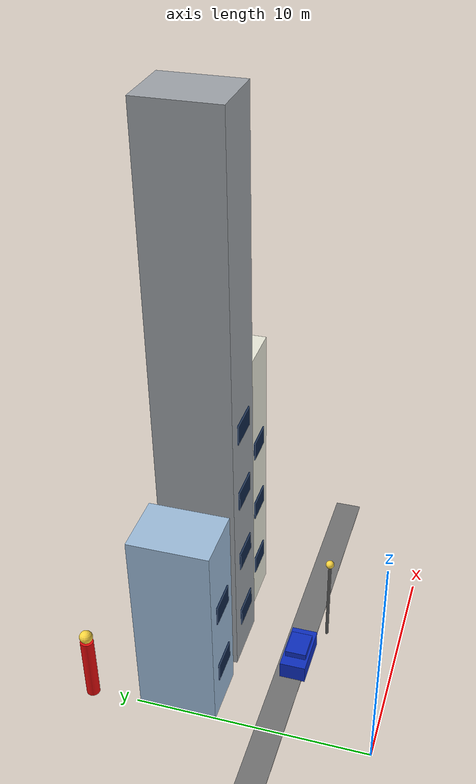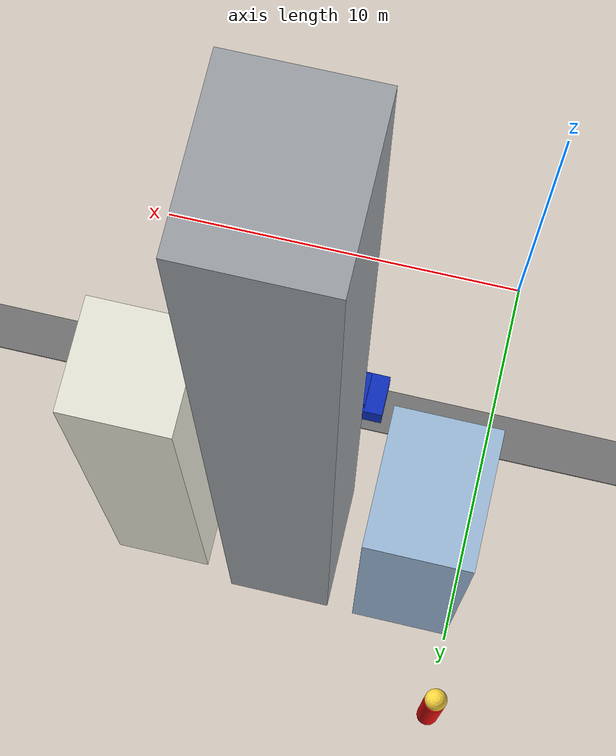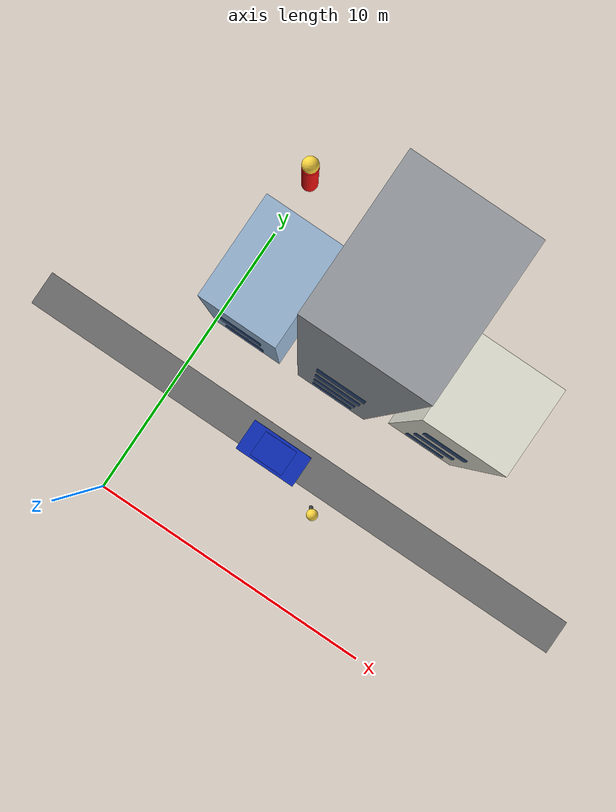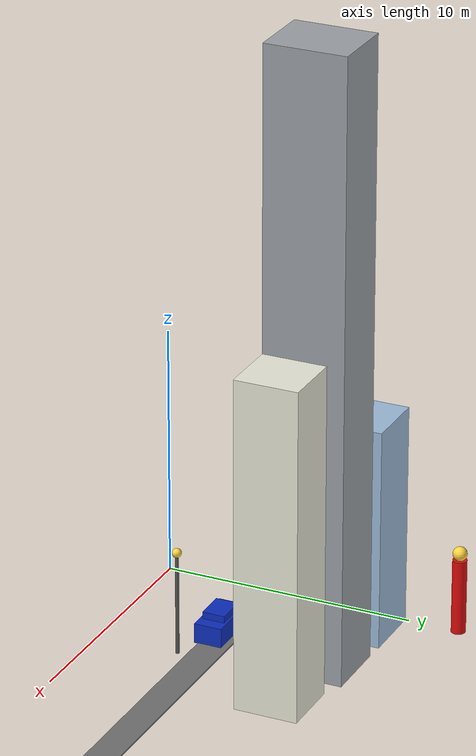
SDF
<sdf version="1.7">
 <world name="urban_street">
  <model name="north_sidewalk">
   <static>true</static>
   <pose>0 4.25 0.04 0 0 0.0</pose>
   <link name="link">
    <collision name="collision"><geometry><box><size>90 1.2 0.06</size></box></geometry></collision>
    <visual name="visual">
     <geometry><box><size>90 1.2 0.06</size></box></geometry>
     <material>
      <ambient>0.45 0.45 0.45 1</ambient>
      <diffuse>0.45 0.45 0.45 1</diffuse>
      <specular>0.1 0.1 0.1 1</specular>
     </material>
    </visual>
   </link>
  </model>
  <model name="building_facade_40">
   <static>true</static>
   <pose>1.25 8.2 4.41 0 0 0.0</pose>
   <link name="link">
    <collision name="collision"><geometry><box><size>2.51 3.29 8.82</size></box></geometry></collision>
    <visual name="visual">
     <geometry><box><size>2.51 3.29 8.82</size></box></geometry>
     <material>
      <ambient>0.62 0.74 0.86 1</ambient>
      <diffuse>0.62 0.74 0.86 1</diffuse>
      <specular>0.1 0.1 0.1 1</specular>
     </material>
    </visual>
   </link>
  </model>
  <model name="building_facade_40_window_0">
   <static>true</static>
   <pose>1.25 6.52 2.2 0 0 0.0</pose>
   <link name="link">
    <collision name="collision"><geometry><box><size>1.38 0.05 0.85</size></box></geometry></collision>
    <visual name="visual">
     <geometry><box><size>1.38 0.05 0.85</size></box></geometry>
     <material>
      <ambient>0.05 0.14 0.28 1</ambient>
      <diffuse>0.05 0.14 0.28 1</diffuse>
      <specular>0.1 0.1 0.1 1</specular>
     </material>
    </visual>
   </link>
  </model>
  <model name="building_facade_40_window_1">
   <static>true</static>
   <pose>1.25 6.52 5.4 0 0 0.0</pose>
   <link name="link">
    <collision name="collision"><geometry><box><size>1.38 0.05 0.85</size></box></geometry></collision>
    <visual name="visual">
     <geometry><box><size>1.38 0.05 0.85</size></box></geometry>
     <material>
      <ambient>0.05 0.14 0.28 1</ambient>
      <diffuse>0.05 0.14 0.28 1</diffuse>
      <specular>0.1 0.1 0.1 1</specular>
     </material>
    </visual>
   </link>
  </model>
  <model name="building_facade_41">
   <static>true</static>
   <pose>4.5 8.2 12.23 0 0 0.0</pose>
   <link name="link">
    <collision name="collision"><geometry><box><size>2.61 3.2 24.47</size></box></geometry></collision>
    <visual name="visual">
     <geometry><box><size>2.61 3.2 24.47</size></box></geometry>
     <material>
      <ambient>0.62 0.64 0.66 1</ambient>
      <diffuse>0.62 0.64 0.66 1</diffuse>
      <specular>0.1 0.1 0.1 1</specular>
     </material>
    </visual>
   </link>
  </model>
  <model name="building_facade_41_window_0">
   <static>true</static>
   <pose>4.5 6.57 2.2 0 0 0.0</pose>
   <link name="link">
    <collision name="collision"><geometry><box><size>1.44 0.05 0.85</size></box></geometry></collision>
    <visual name="visual">
     <geometry><box><size>1.44 0.05 0.85</size></box></geometry>
     <material>
      <ambient>0.05 0.14 0.28 1</ambient>
      <diffuse>0.05 0.14 0.28 1</diffuse>
      <specular>0.1 0.1 0.1 1</specular>
     </material>
    </visual>
   </link>
  </model>
  <model name="building_facade_41_window_1">
   <static>true</static>
   <pose>4.5 6.57 5.4 0 0 0.0</pose>
   <link name="link">
    <collision name="collision"><geometry><box><size>1.44 0.05 0.85</size></box></geometry></collision>
    <visual name="visual">
     <geometry><box><size>1.44 0.05 0.85</size></box></geometry>
     <material>
      <ambient>0.05 0.14 0.28 1</ambient>
      <diffuse>0.05 0.14 0.28 1</diffuse>
      <specular>0.1 0.1 0.1 1</specular>
     </material>
    </visual>
   </link>
  </model>
  <model name="building_facade_41_window_2">
   <static>true</static>
   <pose>4.5 6.57 8.6 0 0 0.0</pose>
   <link name="link">
    <collision name="collision"><geometry><box><size>1.44 0.05 0.85</size></box></geometry></collision>
    <visual name="visual">
     <geometry><box><size>1.44 0.05 0.85</size></box></geometry>
     <material>
      <ambient>0.05 0.14 0.28 1</ambient>
      <diffuse>0.05 0.14 0.28 1</diffuse>
      <specular>0.1 0.1 0.1 1</specular>
     </material>
    </visual>
   </link>
  </model>
  <model name="building_facade_41_window_3">
   <static>true</static>
   <pose>4.5 6.57 11.8 0 0 0.0</pose>
   <link name="link">
    <collision name="collision"><geometry><box><size>1.44 0.05 0.85</size></box></geometry></collision>
    <visual name="visual">
     <geometry><box><size>1.44 0.05 0.85</size></box></geometry>
     <material>
      <ambient>0.05 0.14 0.28 1</ambient>
      <diffuse>0.05 0.14 0.28 1</diffuse>
      <specular>0.1 0.1 0.1 1</specular>
     </material>
    </visual>
   </link>
  </model>
  <model name="building_facade_42">
   <static>true</static>
   <pose>7.75 8.2 6.55 0 0 0.0</pose>
   <link name="link">
    <collision name="collision"><geometry><box><size>2.42 2.5 13.1</size></box></geometry></collision>
    <visual name="visual">
     <geometry><box><size>2.42 2.5 13.1</size></box></geometry>
     <material>
      <ambient>0.92 0.92 0.86 1</ambient>
      <diffuse>0.92 0.92 0.86 1</diffuse>
      <specular>0.1 0.1 0.1 1</specular>
     </material>
    </visual>
   </link>
  </model>
  <model name="building_facade_42_window_0">
   <static>true</static>
   <pose>7.75 6.92 2.2 0 0 0.0</pose>
   <link name="link">
    <collision name="collision"><geometry><box><size>1.33 0.05 0.85</size></box></geometry></collision>
    <visual name="visual">
     <geometry><box><size>1.33 0.05 0.85</size></box></geometry>
     <material>
      <ambient>0.05 0.14 0.28 1</ambient>
      <diffuse>0.05 0.14 0.28 1</diffuse>
      <specular>0.1 0.1 0.1 1</specular>
     </material>
    </visual>
   </link>
  </model>
  <model name="building_facade_42_window_1">
   <static>true</static>
   <pose>7.75 6.92 5.4 0 0 0.0</pose>
   <link name="link">
    <collision name="collision"><geometry><box><size>1.33 0.05 0.85</size></box></geometry></collision>
    <visual name="visual">
     <geometry><box><size>1.33 0.05 0.85</size></box></geometry>
     <material>
      <ambient>0.05 0.14 0.28 1</ambient>
      <diffuse>0.05 0.14 0.28 1</diffuse>
      <specular>0.1 0.1 0.1 1</specular>
     </material>
    </visual>
   </link>
  </model>
  <model name="building_facade_42_window_2">
   <static>true</static>
   <pose>7.75 6.92 8.6 0 0 0.0</pose>
   <link name="link">
    <collision name="collision"><geometry><box><size>1.33 0.05 0.85</size></box></geometry></collision>
    <visual name="visual">
     <geometry><box><size>1.33 0.05 0.85</size></box></geometry>
     <material>
      <ambient>0.05 0.14 0.28 1</ambient>
      <diffuse>0.05 0.14 0.28 1</diffuse>
      <specular>0.1 0.1 0.1 1</specular>
     </material>
    </visual>
   </link>
  </model>
  <model name="street_pole_11">
   <static>true</static>
   <pose>6.0 3.25 2.0 0 0 0</pose>
   <link name="link">
    <collision name="collision">
     <geometry><cylinder><radius>0.07</radius><length>4.0</length></cylinder></geometry>
    </collision>
    <visual name="visual">
     <geometry><cylinder><radius>0.07</radius><length>4.0</length></cylinder></geometry>
     <material>
      <ambient>0.35 0.35 0.35 1</ambient>
      <diffuse>0.35 0.35 0.35 1</diffuse>
      <specular>0.1 0.1 0.1 1</specular>
     </material>
    </visual>
   </link>
  </model>
  <model name="lamp_head_11">
   <static>true</static>
   <pose>6.0 3.25 4.15 0 0 0</pose>
   <link name="link">
    <visual name="visual">
     <geometry><sphere><radius>0.18</radius></sphere></geometry>
     <material>
      <ambient>1.0 0.85 0.25 1</ambient>
      <diffuse>1.0 0.85 0.25 1</diffuse>
      <specular>0.1 0.1 0.1 1</specular>
     </material>
    </visual>
   </link>
  </model>
  <model name="parked_vehicle_body_05">
   <static>true</static>
   <pose>4 4.05 0.45 0 0 0.0</pose>
   <link name="link">
    <collision name="collision"><geometry><box><size>2.2 1.1 0.8</size></box></geometry></collision>
    <visual name="visual">
     <geometry><box><size>2.2 1.1 0.8</size></box></geometry>
     <material>
      <ambient>0.05 0.18 0.75 1</ambient>
      <diffuse>0.05 0.18 0.75 1</diffuse>
      <specular>0.1 0.1 0.1 1</specular>
     </material>
    </visual>
   </link>
  </model>
  <model name="parked_vehicle_roof_05">
   <static>true</static>
   <pose>4 4.05 0.95 0 0 0.0</pose>
   <link name="link">
    <collision name="collision"><geometry><box><size>1.2 0.9 0.35</size></box></geometry></collision>
    <visual name="visual">
     <geometry><box><size>1.2 0.9 0.35</size></box></geometry>
     <material>
      <ambient>0.05 0.18 0.75 1</ambient>
      <diffuse>0.05 0.18 0.75 1</diffuse>
      <specular>0.1 0.1 0.1 1</specular>
     </material>
    </visual>
   </link>
  </model>
  <model name="gps_jammer_red_tower">
   <static>true</static>
   <pose>0 12 1.5 0 0 0</pose>
   <link name="link">
    <collision name="collision">
     <geometry><cylinder><radius>0.28</radius><length>3.0</length></cylinder></geometry>
    </collision>
    <visual name="visual">
     <geometry><cylinder><radius>0.28</radius><length>3.0</length></cylinder></geometry>
     <material>
      <ambient>0.9 0.05 0.05 1</ambient>
      <diffuse>0.9 0.05 0.05 1</diffuse>
      <specular>0.1 0.1 0.1 1</specular>
     </material>
    </visual>
   </link>
  </model>
  <model name="gps_jammer_beacon">
   <static>true</static>
   <pose>0 12 3.25 0 0 0</pose>
   <link name="link">
    <visual name="visual">
     <geometry><sphere><radius>0.28</radius></sphere></geometry>
     <material>
      <ambient>1.0 0.85 0.25 1</ambient>
      <diffuse>1.0 0.85 0.25 1</diffuse>
      <specular>0.1 0.1 0.1 1</specular>
     </material>
    </visual>
   </link>
  </model>
 </world>
</sdf>
